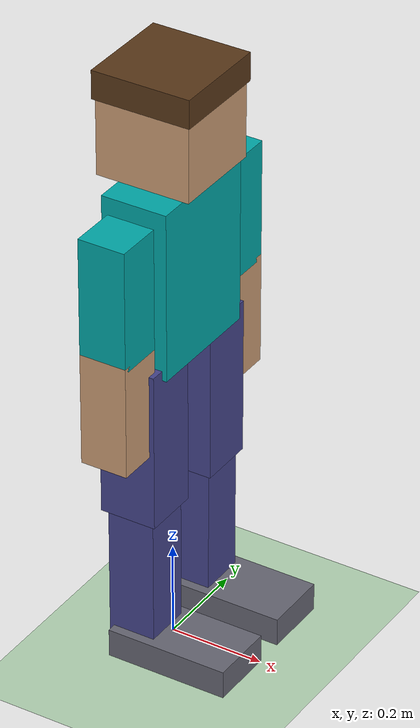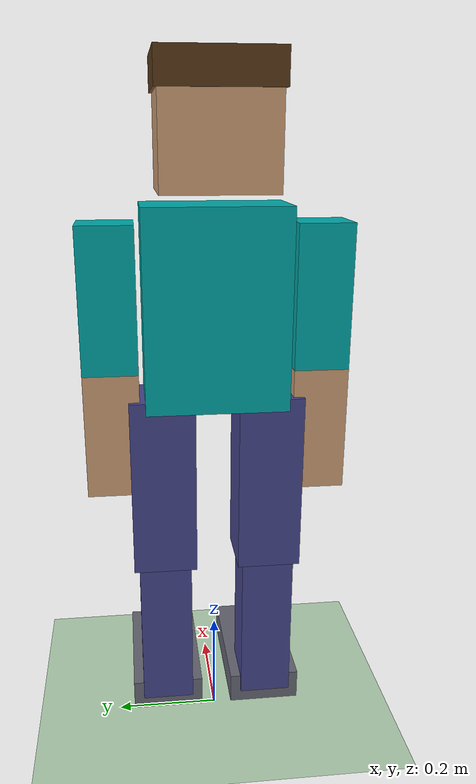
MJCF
<mujoco model="minecraft_steve">
  <compiler angle="degree" inertiafromgeom="true"/>
  <option timestep="0.005" iterations="20" integrator="Euler"/>

  <default>
    <joint armature="0.02" damping="2" limited="true"/>
    <geom type="box" friction="1 0.1 0.1" density="250"/>
    <motor ctrllimited="true" ctrlrange="-1 1" gear="80"/>
  </default>

  <asset>
    <texture type="skybox" builtin="gradient" rgb1="0.5 0.6 0.7" rgb2="0.1 0.15 0.25" width="256" height="256"/>
    <texture name="grid" type="2d" builtin="checker" rgb1="0.55 0.75 0.55" rgb2="0.85 0.9 0.85" width="300" height="300"/>
    <material name="grid" texture="grid" texrepeat="8 8" reflectance="0.1"/>
  </asset>

  <worldbody>
    <light pos="0 0 4" dir="0 0 -1" diffuse="0.9 0.9 0.9"/>
    <geom name="floor" type="plane" size="20 20 0.1" material="grid"/>

    <!-- torso (cyan shirt) — free root -->
    <body name="torso" pos="0 0 0.86">
      <freejoint name="root"/>
      <geom name="torso" size="0.07 0.13 0.18" pos="0 0 0" rgba="0.0 0.66 0.66 1"/>
      <!-- head (skin) + brown hair on top -->
      <geom name="head" size="0.10 0.10 0.10" pos="0 0 0.30" rgba="0.80 0.62 0.46 1"/>
      <geom name="hair" size="0.105 0.105 0.03" pos="0 0 0.39" rgba="0.35 0.22 0.10 1"/>

      <!-- right arm (shoulder pitch) -->
      <body name="upper_arm_r" pos="0 0.19 0.12">
        <joint name="shoulder_r" type="hinge" axis="0 1 0" range="-90 90"/>
        <geom size="0.05 0.05 0.13" pos="0 0 -0.10" rgba="0.0 0.66 0.66 1"/>
        <body name="lower_arm_r" pos="0 0 -0.24">
          <joint name="elbow_r" type="hinge" axis="0 1 0" range="-130 0"/>
          <geom size="0.05 0.05 0.12" pos="0 0 -0.10" rgba="0.80 0.62 0.46 1"/>
        </body>
      </body>
      <!-- left arm -->
      <body name="upper_arm_l" pos="0 -0.19 0.12">
        <joint name="shoulder_l" type="hinge" axis="0 1 0" range="-90 90"/>
        <geom size="0.05 0.05 0.13" pos="0 0 -0.10" rgba="0.0 0.66 0.66 1"/>
        <body name="lower_arm_l" pos="0 0 -0.24">
          <joint name="elbow_l" type="hinge" axis="0 1 0" range="-130 0"/>
          <geom size="0.05 0.05 0.12" pos="0 0 -0.10" rgba="0.80 0.62 0.46 1"/>
        </body>
      </body>

      <!-- right leg (blue trousers): hip roll+pitch, knee, ankle -->
      <body name="thigh_r" pos="0 0.10 -0.18">
        <joint name="hip_x_r" type="hinge" axis="1 0 0" range="-30 30"/>
        <joint name="hip_y_r" type="hinge" axis="0 1 0" range="-90 50"/>
        <geom size="0.06 0.06 0.17" pos="0 0 -0.15" rgba="0.27 0.27 0.55 1"/>
        <body name="shin_r" pos="0 0 -0.32">
          <joint name="knee_r" type="hinge" axis="0 1 0" range="0 90"/>
          <geom size="0.05 0.05 0.16" pos="0 0 -0.14" rgba="0.27 0.27 0.55 1"/>
          <body name="foot_r" pos="0.04 0 -0.30">
            <joint name="ankle_r" type="hinge" axis="0 1 0" range="-50 50"/>
            <geom size="0.13 0.07 0.03" pos="0.05 0 0" rgba="0.4 0.4 0.45 1"/>
          </body>
        </body>
      </body>
      <!-- left leg -->
      <body name="thigh_l" pos="0 -0.10 -0.18">
        <joint name="hip_x_l" type="hinge" axis="1 0 0" range="-30 30"/>
        <joint name="hip_y_l" type="hinge" axis="0 1 0" range="-90 50"/>
        <geom size="0.06 0.06 0.17" pos="0 0 -0.15" rgba="0.27 0.27 0.55 1"/>
        <body name="shin_l" pos="0 0 -0.32">
          <joint name="knee_l" type="hinge" axis="0 1 0" range="0 90"/>
          <geom size="0.05 0.05 0.16" pos="0 0 -0.14" rgba="0.27 0.27 0.55 1"/>
          <body name="foot_l" pos="0.04 0 -0.30">
            <joint name="ankle_l" type="hinge" axis="0 1 0" range="-50 50"/>
            <geom size="0.13 0.07 0.03" pos="0.05 0 0" rgba="0.4 0.4 0.45 1"/>
          </body>
        </body>
      </body>
    </body>
  </worldbody>

  <actuator>
    <motor joint="hip_y_r"/>
    <motor joint="hip_x_r"/>
    <motor joint="knee_r"/>
    <motor joint="ankle_r" gear="40"/>
    <motor joint="hip_y_l"/>
    <motor joint="hip_x_l"/>
    <motor joint="knee_l"/>
    <motor joint="ankle_l" gear="40"/>
    <motor joint="shoulder_r" gear="30"/>
    <motor joint="shoulder_l" gear="30"/>
    <motor joint="elbow_r" gear="18"/>
    <motor joint="elbow_l" gear="18"/>
  </actuator>
</mujoco>
